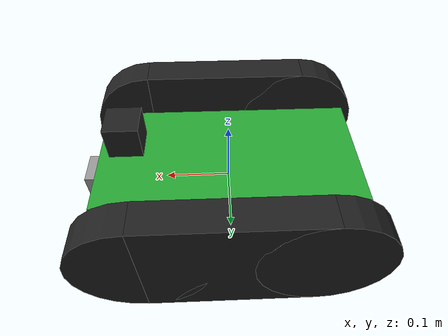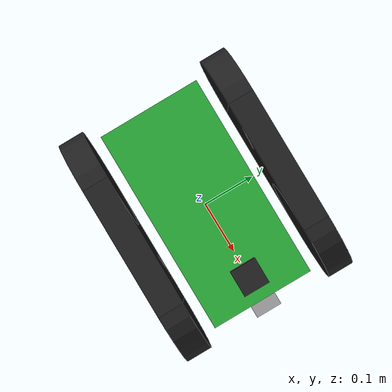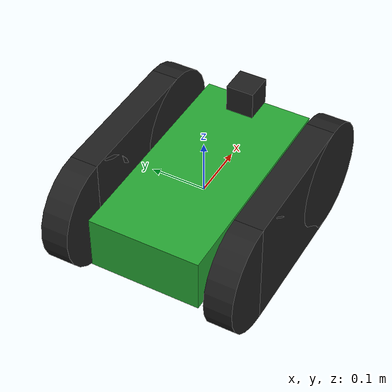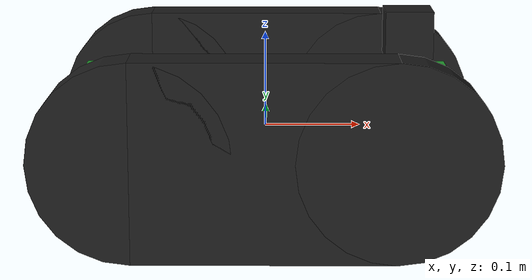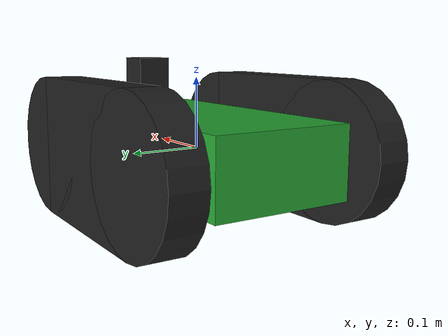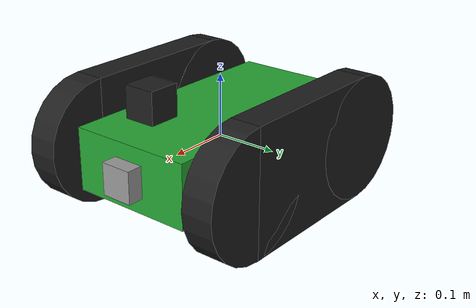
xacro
<?xml version='1.0'?>

<robot name="skidbot" xmlns:xacro="http://www.ros.org/wiki/xacro">

  <xacro:include filename="$(find gcamp_gazebo)/urdf/skidbot.gazebo" />

  <link name="robot_footprint"></link>

  <joint name="robot_footprint_joint" type="fixed">
    <origin xyz="0 0 0" rpy="0 0 0" />
    <parent link="robot_footprint"/>
    <child link="chassis" />
  </joint>

  <link name='chassis'>
    <pose>0 0 0.1 0 0 0</pose>

    <inertial>
      <mass value="15.0"/>
      <origin xyz="0.0 0 0" rpy=" 0 0 0"/>
      <inertia ixx="0.1" ixy="0" ixz="0" iyy="0.1" iyz="0" izz="0.1" />
    </inertial>

    <collision name='collision'>
      <origin xyz="0 0 0" rpy=" 0 0 0"/>
      <geometry>
        <box size=".4 .2 .1"/>
      </geometry>
    </collision>

    <visual name='chassis_visual'>
      <origin xyz="0 0 0" rpy=" 0 0 0"/>
      <geometry>
        <box size=".4 .2 .1"/>
      </geometry>
    </visual>
  </link>

  <link name="front_left_wheel">
    <inertial>
      <mass value="8.0"/>
      <origin xyz="0.0 0 0" rpy=" 0 1.5707 1.5707"/>
      <inertia ixx="0.1" ixy="0" ixz="0" iyy="0.1" iyz="0" izz="0.1" />
    </inertial>

    <collision>
      <origin xyz="0.0 0 0" rpy=" 0 1.5707 1.5707"/>
      <geometry>
        <cylinder length="0.05" radius="0.1"/>
      </geometry>
    </collision>
  </link>

  <link name="back_left_wheel">
    <inertial>
      <mass value="8.0"/>
      <origin xyz="0.0 0 0" rpy=" 0 1.5707 1.5707"/>
      <inertia ixx="0.1" ixy="0" ixz="0" iyy="0.1" iyz="0" izz="0.1" />
    </inertial>

    <collision>
      <origin xyz="0.0 0 0" rpy=" 0 1.5707 1.5707"/>
      <geometry>
        <cylinder length="0.05" radius="0.1"/>
      </geometry>
    </collision>
  </link>

  <link name="left_track">
    <visual name="left_track_visual">
      <origin rpy="1.5708 0 1.5708" xyz="0 0 0"/>
      <geometry>
        <box size="0.05 0.2 0.26"/>
      </geometry>
    </visual>

    <visual name="left_track_visual_1">
      <origin rpy="1.5708 -0 0" xyz="0.13 0 0"/>
      <geometry>
        <cylinder length="0.05" radius="0.1"/>
      </geometry>
    </visual>

    <visual name="left_track_visual_2">
      <origin rpy="1.5708 -0 0" xyz="-0.13 0 0"/>
      <geometry>
        <cylinder length="0.05" radius="0.1"/>
      </geometry>
    </visual>
  </link>

  <link name="front_right_wheel">
    <inertial>
      <mass value="8.0"/>
      <origin xyz="0.0 0 0" rpy=" 0 1.5707 1.5707"/>
      <inertia ixx="0.1" ixy="0" ixz="0" iyy="0.1" iyz="0" izz="0.1" />
    </inertial>

    <collision>
      <origin xyz="0.0 0 0" rpy=" 0 1.5707 1.5707"/>
      <geometry>
        <cylinder length="0.05" radius="0.1"/>
      </geometry>
    </collision>
  </link>

  <link name="back_right_wheel">
    <inertial>
      <mass value="8.0"/>
      <origin xyz="0.0 0 0" rpy=" 0 1.5707 1.5707"/>
      <inertia ixx="0.1" ixy="0" ixz="0" iyy="0.1" iyz="0" izz="0.1" />
    </inertial>

    <collision>
      <origin xyz="0.0 0 0" rpy=" 0 1.5707 1.5707"/>
      <geometry>
        <cylinder length="0.05" radius="0.1"/>
      </geometry>
    </collision>
  </link>

  <link name="right_track">
    <visual name="right_track_visual">
      <origin rpy="1.5708 0 1.5708" xyz="0 0 0"/>
      <geometry>
        <box size="0.05 0.2 0.26"/>
      </geometry>
    </visual>

    <visual name="right_track_visual_1">
      <origin rpy="1.5708 -0 0" xyz="0.13 0 0"/>
      <geometry>
        <cylinder length="0.05" radius="0.1"/>
      </geometry>
    </visual>

    <visual name="right_track_visual_2">
      <origin rpy="1.5708 -0 0" xyz="-0.13 0 0"/>
      <geometry>
        <cylinder length="0.05" radius="0.1"/>
      </geometry>
    </visual>
  </link>

  <link name="camera">
    <inertial>
      <mass value="0.1"/>
      <origin xyz="0.05 0.05 0.05" rpy=" 0 0 0"/>
      <inertia ixx="1e-6" ixy="0" ixz="0" iyy="1e-6" iyz="0" izz="1e-6" />
    </inertial>

    <visual name="camera_visual">
      <origin xyz="0 0 0" rpy="0 0 0" />
      <geometry>
        <box size="0.05 0.05 0.05"/>
      </geometry>
    </visual>

    <collision name="camera_colision">
      <origin xyz="0 0 0" rpy="0 0 0" />
      <geometry>
        <box size="0.05 0.05 0.05"/>
      </geometry>
    </collision>
  </link>

  <link name="hokuyo">
    <inertial>
      <mass value="1e-5"/>
      <origin xyz="0 0 0" rpy=" 0 0 0"/>
      <inertia ixx="1e-6" ixy="0" ixz="0" iyy="1e-6" iyz="0" izz="1e-6" />
    </inertial>

    <visual name="hokuyo_visual">
      <origin xyz="0 0 0" rpy="0 0 0" />
      <geometry>
        <box size="0.05 0.05 0.05"/>
      </geometry>
    </visual>

    <collision name="hokuyo_colision">
      <origin xyz="0 0 0" rpy="0 0 0" />
      <geometry>
        <box size="0.1 0.1 0.1"/>
      </geometry>
    </collision>
  </link>

  <link name="imu_link">
    <inertial>
      <mass value="0.01" />
      <inertia ixx="1.0" ixy="0" ixz="0" iyy="1.0" iyz="0" izz="1.0" />
    </inertial>
  </link>

  <joint type="continuous" name="front_left_wheel_joint">
    <origin xyz="0.13 0.15 0" rpy="0 0 0"/>
    <child link="front_left_wheel"/>
    <parent link="chassis"/>
    <axis xyz="0 1 0" rpy="0 0 0"/>
    <limit effort="10000" velocity="1000"/>
    <dynamics damping="1.0" friction="1.0"/>
  </joint>

  <joint type="continuous" name="front_right_wheel_joint">
    <origin xyz="0.13 -0.15 0" rpy="0 0 0"/>
    <child link="front_right_wheel"/>
    <parent link="chassis"/>
    <axis xyz="0 1 0" rpy="0 0 0"/>
    <limit effort="10000" velocity="1000"/>
    <dynamics damping="1.0" friction="1.0"/>
  </joint>

  <joint type="continuous" name="back_left_wheel_joint">
    <origin xyz="-0.13 0.15 0" rpy="0 0 0"/>
    <child link="back_left_wheel"/>
    <parent link="chassis"/>
    <axis xyz="0 1 0" rpy="0 0 0"/>
    <limit effort="10000" velocity="1000"/>
    <dynamics damping="1.0" friction="1.0"/>
  </joint>

  <joint type="continuous" name="back_right_wheel_joint">
    <origin xyz="-0.13 -0.15 0" rpy="0 0 0"/>
    <child link="back_right_wheel"/>
    <parent link="chassis"/>
    <axis xyz="0 1 0" rpy="0 0 0"/>
    <limit effort="10000" velocity="1000"/>
    <dynamics damping="1.0" friction="1.0"/>
  </joint>

  <joint name="right_track_j" type="fixed">
    <origin rpy="0 0 0" xyz="0 -0.15 0"/>
    <child link="right_track"/>
    <parent link="chassis"/>
  </joint>

  <joint name="left_track_j" type="fixed">
    <origin rpy="0 0 0" xyz="0 0.15 0"/>
    <child link="left_track"/>
    <parent link="chassis"/>
  </joint>

  <joint type="fixed" name="camera_joint">
    <origin xyz="0.2 0 0" rpy="0 0 0"/>
    <child link="camera"/>
    <parent link="chassis"/>
    <axis xyz="0 1 0" rpy="0 0 0"/>
  </joint>

  <joint type="fixed" name="hokuyo_joint">
    <origin xyz="0.15 0 0.1" rpy="0 0 0"/>
    <child link="hokuyo"/>
    <parent link="chassis"/>
    <axis xyz="0 1 0" rpy="0 0 0"/>
  </joint>

  <joint name="imu_joint" type="fixed">
    <origin xyz="0.0 0.0 0.0" rpy="0 0 0" />
    <child link="imu_link" />
    <parent link="chassis" />
  </joint>

  <gazebo reference="chassis">
    <material>Gazebo/Green</material>
  </gazebo>

  <gazebo reference="left_track">
    <material>Gazebo/Black</material>
  </gazebo>

  <gazebo reference="right_track">
    <material>Gazebo/Black</material>
  </gazebo>

  <gazebo reference="camera">
    <material>Gazebo/Gray</material>
  </gazebo>

  <gazebo reference="hokuyo">
    <material>Gazebo/Black</material>
  </gazebo>

</robot>
